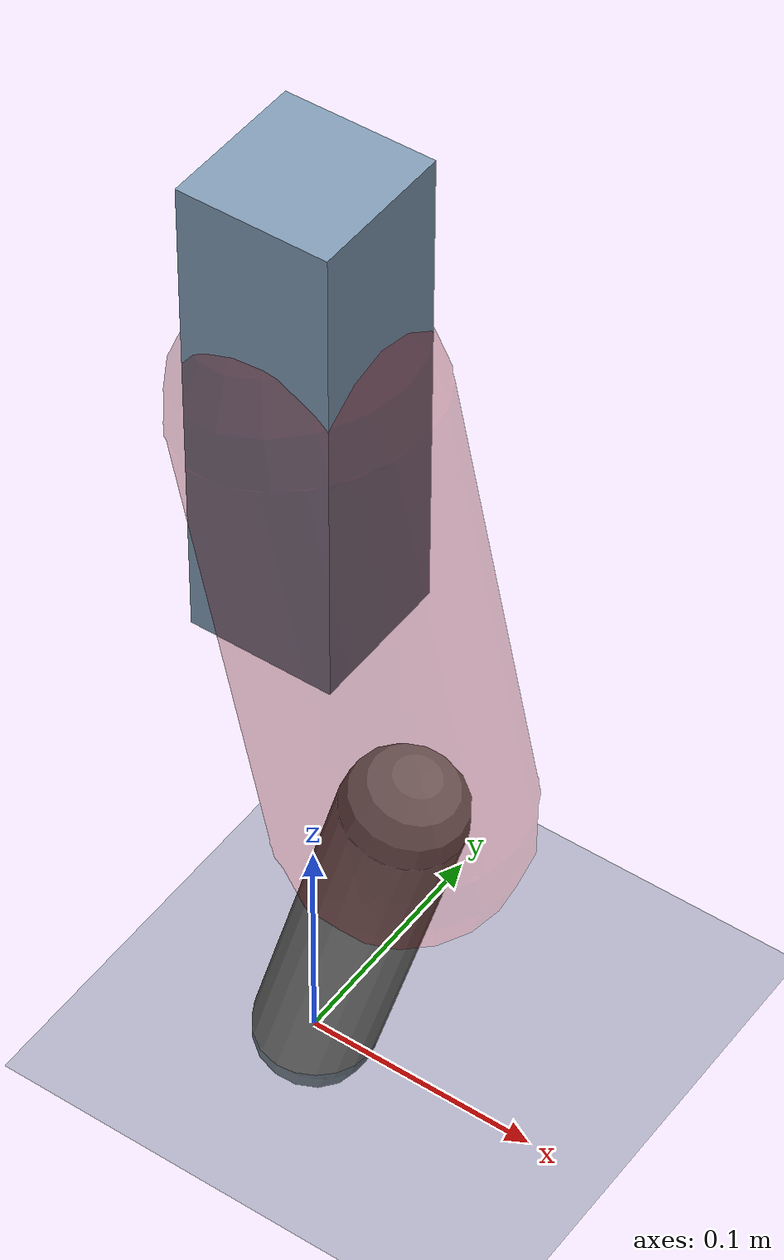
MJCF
<mujoco model="Hopper2D">
	<compiler inertiafromgeom="true" angle="radian" />
	<option timestep="0.001" integrator="implicit" cone="elliptic" solver="Newton" tolerance="1e-10" />

	<default>
		<geom contype="1" conaffinity="1" condim="3" friction="2 0.005 0.0001" solref="0.005 1" />
		<joint limited="true" damping="0.1" />
	</default>

	<asset>
		<texture name="skybox" type="skybox" builtin="gradient" rgb1=".4 .6 .8" rgb2="0 0 0" width="800" height="800" />
		<texture name="grid" type="2d" builtin="checker" rgb1=".1 .2 .3" rgb2=".2 .3 .4" width="300" height="300" mark="edge" markrgb=".2 .3 .4" />
		<material name="ground" texture="grid" texrepeat="1 1" texuniform="true" reflectance="0.1" />
		<material name="leg" rgba="0.5 0.6 0.7 1" />
	</asset>

	<worldbody>

		<geom name="floor" type="plane" size="5 5 0.25" material="ground" />

		<light directional="false" diffuse="0.8 0.8 0.8" specular="0.3 0.3 0.3" pos="0 0 2" dir="0 0 -1" />
		<light mode="targetbodycom" target="base" directional="false" diffuse="0.8 0.8 0.8" specular="0.3 0.3 0.3" pos="0 0 2" dir="0 0 -1" />

		<camera name="fixed" pos="0 -2 1" xyaxes="1 0 0 0 0 1" />
		<camera name="tracking" mode="trackcom" pos="0 -3 1" />

		<body name="root" pos="0 0 0.33239594125788907">
			<joint name="slide_x" type="slide" axis="1 0 0" range="-100 100" />
			<joint name="slide_z" type="slide" axis="0 0 1" range="0 10" />

			<body name="base" pos="0 0 0">
				<geom name="torso" type="box" size="0.03 0.03 0.1" mass="3.227" material="leg" />

				<body name="link1" pos="0 0 0" euler="0 1.348692585695376 0">
					<joint type="hinge" axis="0 -1 0" pos="0 0 0" name="hinge1" limited="true" range="-3.14 3.14" stiffness="0" damping="0.1" />
					<geom name="thigh" type="capsule" fromto="0 0 0 0.18574049459062622 0 0" size="0.05" rgba="0.5 0 0 0.3" mass="0.6945512364765656" />

					<body name="link2" pos="0.18574049459062622 0 0" euler="0 0.48634850612677394 0">
						<joint type="hinge" axis="0 -1 0" pos="0 0 0" name="hinge2" limited="true" range="-3.14 3.14" stiffness="0" damping="0.1" />
						<geom name="shank" type="capsule" fromto="0 0 0 0.1566554466672629 0 0" size="0.025" mass="0.3635899020005366" />

					</body>
				</body>
			</body>
		</body>
	</worldbody>

	<actuator>
		<motor name="torque1" joint="hinge1" ctrlrange="-74.77045702581077 74.77045702581077" ctrllimited="true" gear="1" />
		<motor name="torque2" joint="hinge2" ctrlrange="-173.65972519431955 173.65972519431955" ctrllimited="true" gear="1" />
	</actuator>
</mujoco>
